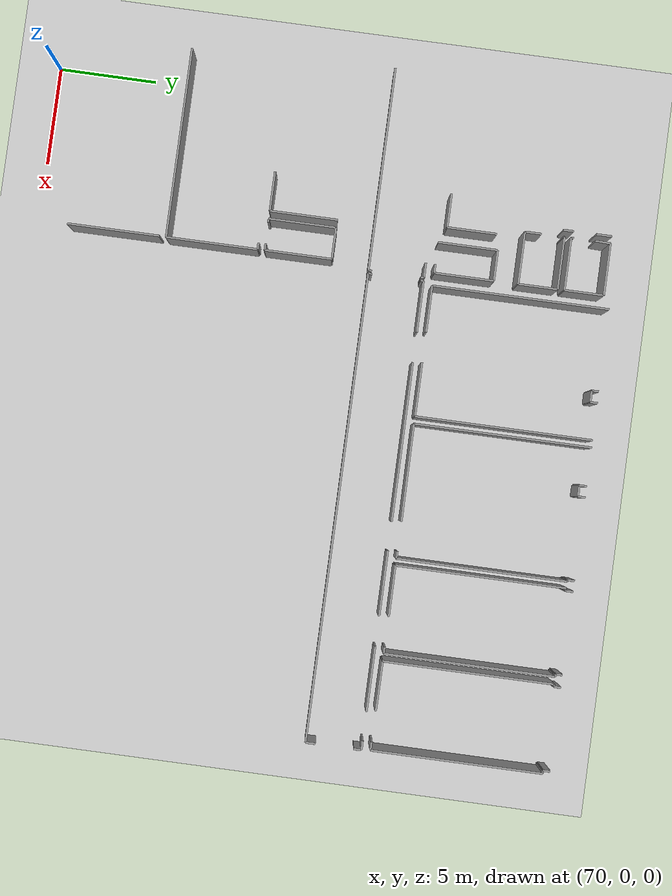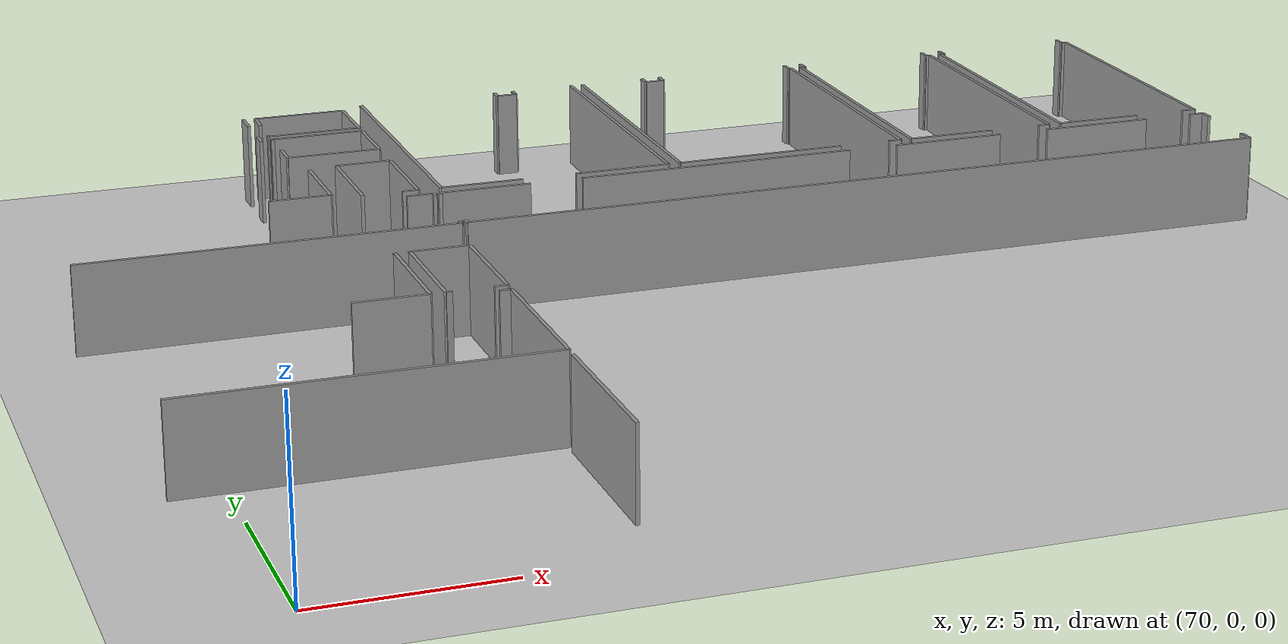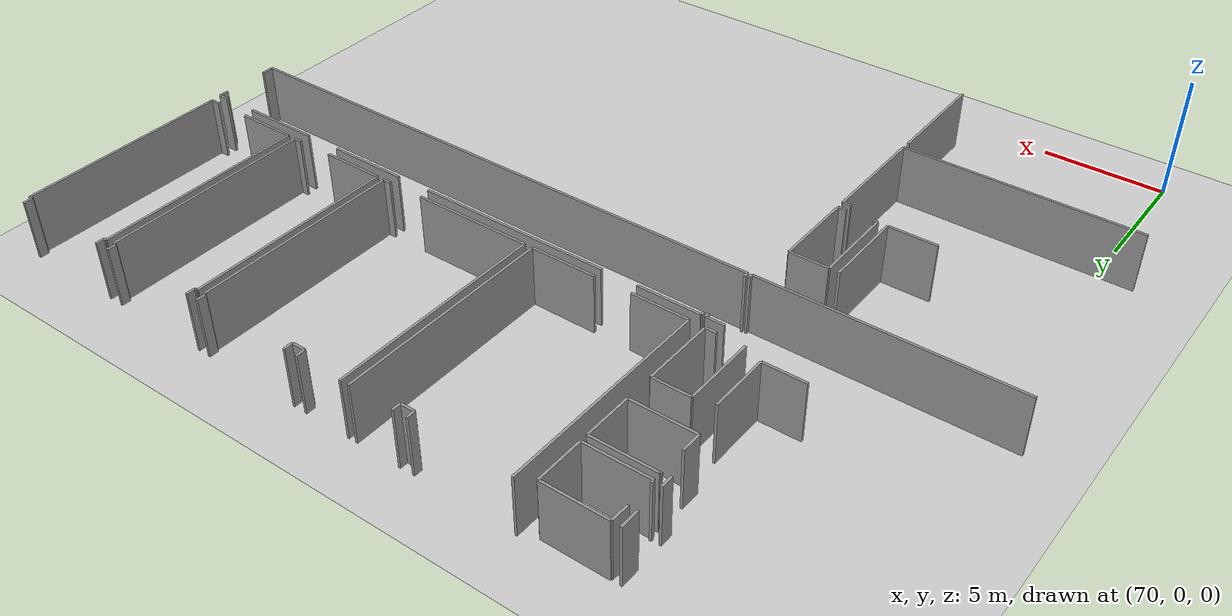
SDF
<sdf version="1.6">
 <world name="default">
  <model name="ground_plane">
   <static>1</static>
   <link name="link">
    <collision name="collision">
     <geometry><plane><normal>0 0 1</normal><size>100 100</size></plane></geometry>
     <surface><friction><ode><mu>100</mu><mu2>50</mu2></ode></friction></surface>
    </collision>
    <visual name="visual">
     <cast_shadows>0</cast_shadows>
     <geometry><plane><normal>0 0 1</normal><size>100 100</size></plane></geometry>
     <material>
      <script><uri>file://media/materials/scripts/gazebo.material</uri><name>Gazebo/Grey</name></script>
     </material>
    </visual>
   </link>
  </model>
  <model name="50010536_PLAN3">
   <static>1</static>
   <link name="Wall_685">
    <collision name="Wall_685_Collision">
     <geometry><box><size>2.66361933784 0.1 2.5</size></box></geometry>
     <pose>1.33180966892 0 1.25 0 0 0</pose>
    </collision>
    <visual name="Wall_685_Visual">
     <pose>1.33180966892 0 1.25 0 0 0</pose>
     <geometry><box><size>2.66361933784 0.1 2.5</size></box></geometry>
     <material>
      <script><uri>file://media/materials/scripts/gazebo.material</uri><name>Gazebo/Grey</name></script>
      <ambient>1 1 1 1</ambient>
     </material>
    </visual>
    <pose>178.117131702 -0.393562517855 0 0 0 0.0</pose>
   </link>
   <link name="Wall_686">
    <collision name="Wall_686_Collision">
     <geometry><box><size>2.00915468368 0.1 2.5</size></box></geometry>
     <pose>1.00457734184 0 1.25 0 0 0</pose>
    </collision>
    <visual name="Wall_686_Visual">
     <pose>1.00457734184 0 1.25 0 0 0</pose>
     <geometry><box><size>2.00915468368 0.1 2.5</size></box></geometry>
     <material>
      <script><uri>file://media/materials/scripts/gazebo.material</uri><name>Gazebo/Grey</name></script>
      <ambient>1 1 1 1</ambient>
     </material>
    </visual>
    <pose>180.78075104 -0.393562517855 0 0 0 -1.57079632679</pose>
   </link>
   <link name="Wall_687">
    <collision name="Wall_687_Collision">
     <geometry><box><size>2.69104529727 0.1 2.5</size></box></geometry>
     <pose>1.34552264864 0 1.25 0 0 0</pose>
    </collision>
    <visual name="Wall_687_Visual">
     <pose>1.34552264864 0 1.25 0 0 0</pose>
     <geometry><box><size>2.69104529727 0.1 2.5</size></box></geometry>
     <material>
      <script><uri>file://media/materials/scripts/gazebo.material</uri><name>Gazebo/Grey</name></script>
      <ambient>1 1 1 1</ambient>
     </material>
    </visual>
    <pose>180.78075104 -2.40271720154 0 0 0 3.14159265359</pose>
   </link>
   <link name="Wall_688">
    <collision name="Wall_688_Collision">
     <geometry><box><size>0.126032441355 0.1 2.5</size></box></geometry>
     <pose>0.0630162206774 0 1.25 0 0 0</pose>
    </collision>
    <visual name="Wall_688_Visual">
     <pose>0.0630162206774 0 1.25 0 0 0</pose>
     <geometry><box><size>0.126032441355 0.1 2.5</size></box></geometry>
     <material>
      <script><uri>file://media/materials/scripts/gazebo.material</uri><name>Gazebo/Grey</name></script>
      <ambient>1 1 1 1</ambient>
     </material>
    </visual>
    <pose>178.089705742 -2.40271720154 0 0 0 1.57079632679</pose>
   </link>
   <link name="Wall_689">
    <collision name="Wall_689_Collision">
     <geometry><box><size>0.766081664972 0.1 2.5</size></box></geometry>
     <pose>0.383040832486 0 1.25 0 0 0</pose>
    </collision>
    <visual name="Wall_689_Visual">
     <pose>0.383040832486 0 1.25 0 0 0</pose>
     <geometry><box><size>0.766081664972 0.1 2.5</size></box></geometry>
     <material>
      <script><uri>file://media/materials/scripts/gazebo.material</uri><name>Gazebo/Grey</name></script>
      <ambient>1 1 1 1</ambient>
     </material>
    </visual>
    <pose>178.089705742 -1.15915309653 0 0 0 1.53498836723</pose>
   </link>
   <link name="Wall_690">
    <collision name="Wall_690_Collision">
     <geometry><box><size>0.838828048122 0.1 2.5</size></box></geometry>
     <pose>0.419414024061 0 1.25 0 0 0</pose>
    </collision>
    <visual name="Wall_690_Visual">
     <pose>0.419414024061 0 1.25 0 0 0</pose>
     <geometry><box><size>0.838828048122 0.1 2.5</size></box></geometry>
     <material>
      <script><uri>file://media/materials/scripts/gazebo.material</uri><name>Gazebo/Grey</name></script>
      <ambient>1 1 1 1</ambient>
     </material>
    </visual>
    <pose>178.10265689 -4.75563597118 0 0 0 1.57079632679</pose>
   </link>
   <link name="Wall_691">
    <collision name="Wall_691_Collision">
     <geometry><box><size>0.0646033711075 0.1 2.5</size></box></geometry>
     <pose>0.0323016855538 0 1.25 0 0 0</pose>
    </collision>
    <visual name="Wall_691_Visual">
     <pose>0.0323016855538 0 1.25 0 0 0</pose>
     <geometry><box><size>0.0646033711075 0.1 2.5</size></box></geometry>
     <material>
      <script><uri>file://media/materials/scripts/gazebo.material</uri><name>Gazebo/Grey</name></script>
      <ambient>1 1 1 1</ambient>
     </material>
    </visual>
    <pose>178.10265689 -2.80493921214 0 0 0 1.57079632679</pose>
   </link>
   <link name="Wall_692">
    <collision name="Wall_692_Collision">
     <geometry><box><size>2.68393486335 0.1 2.5</size></box></geometry>
     <pose>1.34196743167 0 1.25 0 0 0</pose>
    </collision>
    <visual name="Wall_692_Visual">
     <pose>1.34196743167 0 1.25 0 0 0</pose>
     <geometry><box><size>2.68393486335 0.1 2.5</size></box></geometry>
     <material>
      <script><uri>file://media/materials/scripts/gazebo.material</uri><name>Gazebo/Grey</name></script>
      <ambient>1 1 1 1</ambient>
     </material>
    </visual>
    <pose>178.10265689 -2.74033584103 0 0 0 0.0</pose>
   </link>
   <link name="Wall_693">
    <collision name="Wall_693_Collision">
     <geometry><box><size>2.02418817255 0.1 2.5</size></box></geometry>
     <pose>1.01209408628 0 1.25 0 0 0</pose>
    </collision>
    <visual name="Wall_693_Visual">
     <pose>1.01209408628 0 1.25 0 0 0</pose>
     <geometry><box><size>2.02418817255 0.1 2.5</size></box></geometry>
     <material>
      <script><uri>file://media/materials/scripts/gazebo.material</uri><name>Gazebo/Grey</name></script>
      <ambient>1 1 1 1</ambient>
     </material>
    </visual>
    <pose>180.786591753 -2.74033584103 0 0 0 -1.57079632679</pose>
   </link>
   <link name="Wall_694">
    <collision name="Wall_694_Collision">
     <geometry><box><size>2.68394958 0.1 2.5</size></box></geometry>
     <pose>1.34197479 0 1.25 0 0 0</pose>
    </collision>
    <visual name="Wall_694_Visual">
     <pose>1.34197479 0 1.25 0 0 0</pose>
     <geometry><box><size>2.68394958 0.1 2.5</size></box></geometry>
     <material>
      <script><uri>file://media/materials/scripts/gazebo.material</uri><name>Gazebo/Grey</name></script>
      <ambient>1 1 1 1</ambient>
     </material>
    </visual>
    <pose>180.786591753 -4.76452401359 0 0 0 3.13828109412</pose>
   </link>
   <link name="Wall_697">
    <collision name="Wall_697_Collision">
     <geometry><box><size>0.794667174555 0.1 2.5</size></box></geometry>
     <pose>0.397333587277 0 1.25 0 0 0</pose>
    </collision>
    <visual name="Wall_697_Visual">
     <pose>0.397333587277 0 1.25 0 0 0</pose>
     <geometry><box><size>0.794667174555 0.1 2.5</size></box></geometry>
     <material>
      <script><uri>file://media/materials/scripts/gazebo.material</uri><name>Gazebo/Grey</name></script>
      <ambient>1 1 1 1</ambient>
     </material>
    </visual>
    <pose>177.750436466 -0.360321239247 0 0 0 -1.57079632679</pose>
   </link>
   <link name="Wall_698">
    <collision name="Wall_698_Collision">
     <geometry><box><size>0.520915468368 0.1 2.5</size></box></geometry>
     <pose>0.260457734184 0 1.25 0 0 0</pose>
    </collision>
    <visual name="Wall_698_Visual">
     <pose>0.260457734184 0 1.25 0 0 0</pose>
     <geometry><box><size>0.520915468368 0.1 2.5</size></box></geometry>
     <material>
      <script><uri>file://media/materials/scripts/gazebo.material</uri><name>Gazebo/Grey</name></script>
      <ambient>1 1 1 1</ambient>
     </material>
    </visual>
    <pose>177.750436466 -2.31251626829 0 0 0 -1.57079632679</pose>
   </link>
   <link name="Wall_704">
    <collision name="Wall_704_Collision">
     <geometry><box><size>2.53842491191 0.1 2.5</size></box></geometry>
     <pose>1.26921245596 0 1.25 0 0 0</pose>
    </collision>
    <visual name="Wall_704_Visual">
     <pose>1.26921245596 0 1.25 0 0 0</pose>
     <geometry><box><size>2.53842491191 0.1 2.5</size></box></geometry>
     <material>
      <script><uri>file://media/materials/scripts/gazebo.material</uri><name>Gazebo/Grey</name></script>
      <ambient>1 1 1 1</ambient>
     </material>
    </visual>
    <pose>178.406120052 -6.1579405136 0 0 0 -1.57079632679</pose>
   </link>
   <link name="Wall_705">
    <collision name="Wall_705_Collision">
     <geometry><box><size>1.74459575279 0.1 2.5</size></box></geometry>
     <pose>0.872297876393 0 1.25 0 0 0</pose>
    </collision>
    <visual name="Wall_705_Visual">
     <pose>0.872297876393 0 1.25 0 0 0</pose>
     <geometry><box><size>1.74459575279 0.1 2.5</size></box></geometry>
     <material>
      <script><uri>file://media/materials/scripts/gazebo.material</uri><name>Gazebo/Grey</name></script>
      <ambient>1 1 1 1</ambient>
     </material>
    </visual>
    <pose>178.406120052 -8.69636542552 0 0 0 3.14159265359</pose>
   </link>
   <link name="Wall_708">
    <collision name="Wall_708_Collision">
     <geometry><box><size>1.57242167413 0.1 2.5</size></box></geometry>
     <pose>0.786210837063 0 1.25 0 0 0</pose>
    </collision>
    <visual name="Wall_708_Visual">
     <pose>0.786210837063 0 1.25 0 0 0</pose>
     <geometry><box><size>1.57242167413 0.1 2.5</size></box></geometry>
     <material>
      <script><uri>file://media/materials/scripts/gazebo.material</uri><name>Gazebo/Grey</name></script>
      <ambient>1 1 1 1</ambient>
     </material>
    </visual>
    <pose>179.21924896 -6.00521855061 0 0 0 0.0</pose>
   </link>
   <link name="Wall_709">
    <collision name="Wall_709_Collision">
     <geometry><box><size>3.04082785766 0.1 2.5</size></box></geometry>
     <pose>1.52041392883 0 1.25 0 0 0</pose>
    </collision>
    <visual name="Wall_709_Visual">
     <pose>1.52041392883 0 1.25 0 0 0</pose>
     <geometry><box><size>3.04082785766 0.1 2.5</size></box></geometry>
     <material>
      <script><uri>file://media/materials/scripts/gazebo.material</uri><name>Gazebo/Grey</name></script>
      <ambient>1 1 1 1</ambient>
     </material>
    </visual>
    <pose>180.791670635 -6.00521855061 0 0 0 -1.57079632679</pose>
   </link>
   <link name="Wall_710">
    <collision name="Wall_710_Collision">
     <geometry><box><size>0.451766498429 0.1 2.5</size></box></geometry>
     <pose>0.225883249214 0 1.25 0 0 0</pose>
    </collision>
    <visual name="Wall_710_Visual">
     <pose>0.225883249214 0 1.25 0 0 0</pose>
     <geometry><box><size>0.451766498429 0.1 2.5</size></box></geometry>
     <material>
      <script><uri>file://media/materials/scripts/gazebo.material</uri><name>Gazebo/Grey</name></script>
      <ambient>1 1 1 1</ambient>
     </material>
    </visual>
    <pose>180.791670635 -9.04604640828 0 0 0 3.14159265359</pose>
   </link>
   <link name="Wall_711">
    <collision name="Wall_711_Collision">
     <geometry><box><size>3.0408291407 0.1 2.5</size></box></geometry>
     <pose>1.52041457035 0 1.25 0 0 0</pose>
    </collision>
    <visual name="Wall_711_Visual">
     <pose>1.52041457035 0 1.25 0 0 0</pose>
     <geometry><box><size>3.0408291407 0.1 2.5</size></box></geometry>
     <material>
      <script><uri>file://media/materials/scripts/gazebo.material</uri><name>Gazebo/Grey</name></script>
      <ambient>1 1 1 1</ambient>
     </material>
    </visual>
    <pose>179.216455576 -9.04604640828 0 0 0 1.56987770065</pose>
   </link>
   <link name="Wall_723">
    <collision name="Wall_723_Collision">
     <geometry><box><size>0.763355870869 0.1 2.5</size></box></geometry>
     <pose>0.381677935435 0 1.25 0 0 0</pose>
    </collision>
    <visual name="Wall_723_Visual">
     <pose>0.381677935435 0 1.25 0 0 0</pose>
     <geometry><box><size>0.763355870869 0.1 2.5</size></box></geometry>
     <material>
      <script><uri>file://media/materials/scripts/gazebo.material</uri><name>Gazebo/Grey</name></script>
      <ambient>1 1 1 1</ambient>
     </material>
    </visual>
    <pose>180.341935689 -9.52955591531 0 0 0 0.0</pose>
   </link>
   <link name="Wall_724">
    <collision name="Wall_724_Collision">
     <geometry><box><size>0.169634637971 0.1 2.5</size></box></geometry>
     <pose>0.0848173189855 0 1.25 0 0 0</pose>
    </collision>
    <visual name="Wall_724_Visual">
     <pose>0.0848173189855 0 1.25 0 0 0</pose>
     <geometry><box><size>0.169634637971 0.1 2.5</size></box></geometry>
     <material>
      <script><uri>file://media/materials/scripts/gazebo.material</uri><name>Gazebo/Grey</name></script>
      <ambient>1 1 1 1</ambient>
     </material>
    </visual>
    <pose>181.10529156 -9.52955591531 0 0 0 -1.57079632679</pose>
   </link>
   <link name="Wall_725">
    <collision name="Wall_725_Collision">
     <geometry><box><size>0.175475351554 0.1 2.5</size></box></geometry>
     <pose>0.0877376757769 0 1.25 0 0 0</pose>
    </collision>
    <visual name="Wall_725_Visual">
     <pose>0.0877376757769 0 1.25 0 0 0</pose>
     <geometry><box><size>0.175475351554 0.1 2.5</size></box></geometry>
     <material>
      <script><uri>file://media/materials/scripts/gazebo.material</uri><name>Gazebo/Grey</name></script>
      <ambient>1 1 1 1</ambient>
     </material>
    </visual>
    <pose>181.10529156 -12.1898739803 0 0 0 -1.57079632679</pose>
   </link>
   <link name="Wall_726">
    <collision name="Wall_726_Collision">
     <geometry><box><size>10.4292289623 0.1 2.5</size></box></geometry>
     <pose>5.21461448116 0 1.25 0 0 0</pose>
    </collision>
    <visual name="Wall_726_Visual">
     <pose>5.21461448116 0 1.25 0 0 0</pose>
     <geometry><box><size>10.4292289623 0.1 2.5</size></box></geometry>
     <material>
      <script><uri>file://media/materials/scripts/gazebo.material</uri><name>Gazebo/Grey</name></script>
      <ambient>1 1 1 1</ambient>
     </material>
    </visual>
    <pose>181.10529156 -12.3653493318 0 0 0 3.14159265359</pose>
   </link>
   <link name="Wall_732">
    <collision name="Wall_732_Collision">
     <geometry><box><size>9.02697520871 0.1 2.5</size></box></geometry>
     <pose>4.51348760436 0 1.25 0 0 0</pose>
    </collision>
    <visual name="Wall_732_Visual">
     <pose>4.51348760436 0 1.25 0 0 0</pose>
     <geometry><box><size>9.02697520871 0.1 2.5</size></box></geometry>
     <material>
      <script><uri>file://media/materials/scripts/gazebo.material</uri><name>Gazebo/Grey</name></script>
      <ambient>1 1 1 1</ambient>
     </material>
    </visual>
    <pose>181.445322668 -9.0605212202 0 0 0 1.57079632679</pose>
   </link>
   <link name="Wall_733">
    <collision name="Wall_733_Collision">
     <geometry><box><size>0.351941084976 0.1 2.5</size></box></geometry>
     <pose>0.175970542488 0 1.25 0 0 0</pose>
    </collision>
    <visual name="Wall_733_Visual">
     <pose>0.175970542488 0 1.25 0 0 0</pose>
     <geometry><box><size>0.351941084976 0.1 2.5</size></box></geometry>
     <material>
      <script><uri>file://media/materials/scripts/gazebo.material</uri><name>Gazebo/Grey</name></script>
      <ambient>1 1 1 1</ambient>
     </material>
    </visual>
    <pose>185.646573342 -0.033546011491 0 0 0 -1.57079632679</pose>
   </link>
   <link name="Wall_734">
    <collision name="Wall_734_Collision">
     <geometry><box><size>0.588388407453 0.1 2.5</size></box></geometry>
     <pose>0.294194203727 0 1.25 0 0 0</pose>
    </collision>
    <visual name="Wall_734_Visual">
     <pose>0.294194203727 0 1.25 0 0 0</pose>
     <geometry><box><size>0.588388407453 0.1 2.5</size></box></geometry>
     <material>
      <script><uri>file://media/materials/scripts/gazebo.material</uri><name>Gazebo/Grey</name></script>
      <ambient>1 1 1 1</ambient>
     </material>
    </visual>
    <pose>185.646573342 -0.385487096467 0 0 0 0.0</pose>
   </link>
   <link name="Wall_735">
    <collision name="Wall_735_Collision">
     <geometry><box><size>0.370225057931 0.1 2.5</size></box></geometry>
     <pose>0.185112528965 0 1.25 0 0 0</pose>
    </collision>
    <visual name="Wall_735_Visual">
     <pose>0.185112528965 0 1.25 0 0 0</pose>
     <geometry><box><size>0.370225057931 0.1 2.5</size></box></geometry>
     <material>
      <script><uri>file://media/materials/scripts/gazebo.material</uri><name>Gazebo/Grey</name></script>
      <ambient>1 1 1 1</ambient>
     </material>
    </visual>
    <pose>186.23496175 -0.385487096467 0 0 0 1.57079632679</pose>
   </link>
   <link name="Wall_736">
    <collision name="Wall_736_Collision">
     <geometry><box><size>9.04652890201 0.1 2.5</size></box></geometry>
     <pose>4.523264451 0 1.25 0 0 0</pose>
    </collision>
    <visual name="Wall_736_Visual">
     <pose>4.523264451 0 1.25 0 0 0</pose>
     <geometry><box><size>9.04652890201 0.1 2.5</size></box></geometry>
     <material>
      <script><uri>file://media/materials/scripts/gazebo.material</uri><name>Gazebo/Grey</name></script>
      <ambient>1 1 1 1</ambient>
     </material>
    </visual>
    <pose>188.127860839 -0.015262038536 0 0 0 -1.57079632679</pose>
   </link>
   <link name="Wall_737">
    <collision name="Wall_737_Collision">
     <geometry><box><size>2.74716693648 0.1 2.5</size></box></geometry>
     <pose>1.37358346824 0 1.25 0 0 0</pose>
    </collision>
    <visual name="Wall_737_Visual">
     <pose>1.37358346824 0 1.25 0 0 0</pose>
     <geometry><box><size>2.74716693648 0.1 2.5</size></box></geometry>
     <material>
      <script><uri>file://media/materials/scripts/gazebo.material</uri><name>Gazebo/Grey</name></script>
      <ambient>1 1 1 1</ambient>
     </material>
    </visual>
    <pose>188.127860839 -9.06179094055 0 0 0 3.14159265359</pose>
   </link>
   <link name="Wall_738">
    <collision name="Wall_738_Collision">
     <geometry><box><size>2.37818654344 0.1 2.5</size></box></geometry>
     <pose>1.18909327172 0 1.25 0 0 0</pose>
    </collision>
    <visual name="Wall_738_Visual">
     <pose>1.18909327172 0 1.25 0 0 0</pose>
     <geometry><box><size>2.37818654344 0.1 2.5</size></box></geometry>
     <material>
      <script><uri>file://media/materials/scripts/gazebo.material</uri><name>Gazebo/Grey</name></script>
      <ambient>1 1 1 1</ambient>
     </material>
    </visual>
    <pose>183.823508872 -9.06179094055 0 0 0 3.14105875081</pose>
   </link>
   <link name="Wall_739">
    <collision name="Wall_739_Collision">
     <geometry><box><size>9.05678824239 0.1 2.5</size></box></geometry>
     <pose>4.52839412119 0 1.25 0 0 0</pose>
    </collision>
    <visual name="Wall_739_Visual">
     <pose>4.52839412119 0 1.25 0 0 0</pose>
     <geometry><box><size>9.05678824239 0.1 2.5</size></box></geometry>
     <material>
      <script><uri>file://media/materials/scripts/gazebo.material</uri><name>Gazebo/Grey</name></script>
      <ambient>1 1 1 1</ambient>
     </material>
    </visual>
    <pose>188.498873123 -9.06686982192 0 0 0 1.57079632679</pose>
   </link>
   <link name="Wall_740">
    <collision name="Wall_740_Collision">
     <geometry><box><size>0.38668063359 0.1 2.5</size></box></geometry>
     <pose>0.193340316795 0 1.25 0 0 0</pose>
    </collision>
    <visual name="Wall_740_Visual">
     <pose>0.193340316795 0 1.25 0 0 0</pose>
     <geometry><box><size>0.38668063359 0.1 2.5</size></box></geometry>
     <material>
      <script><uri>file://media/materials/scripts/gazebo.material</uri><name>Gazebo/Grey</name></script>
      <ambient>1 1 1 1</ambient>
     </material>
    </visual>
    <pose>190.466431768 -0.0100815795321 0 0 0 -1.57079632679</pose>
   </link>
   <link name="Wall_741">
    <collision name="Wall_741_Collision">
     <geometry><box><size>0.568580770085 0.1 2.5</size></box></geometry>
     <pose>0.284290385043 0 1.25 0 0 0</pose>
    </collision>
    <visual name="Wall_741_Visual">
     <pose>0.284290385043 0 1.25 0 0 0</pose>
     <geometry><box><size>0.568580770085 0.1 2.5</size></box></geometry>
     <material>
      <script><uri>file://media/materials/scripts/gazebo.material</uri><name>Gazebo/Grey</name></script>
      <ambient>1 1 1 1</ambient>
     </material>
    </visual>
    <pose>190.466431768 -0.396762213123 0 0 0 0.0</pose>
   </link>
   <link name="Wall_742">
    <collision name="Wall_742_Collision">
     <geometry><box><size>0.384014220868 0.1 2.5</size></box></geometry>
     <pose>0.192007110434 0 1.25 0 0 0</pose>
    </collision>
    <visual name="Wall_742_Visual">
     <pose>0.192007110434 0 1.25 0 0 0</pose>
     <geometry><box><size>0.384014220868 0.1 2.5</size></box></geometry>
     <material>
      <script><uri>file://media/materials/scripts/gazebo.material</uri><name>Gazebo/Grey</name></script>
      <ambient>1 1 1 1</ambient>
     </material>
    </visual>
    <pose>191.035012538 -0.396762213123 0 0 0 1.57079632679</pose>
   </link>
   <link name="Wall_743">
    <collision name="Wall_743_Collision">
     <geometry><box><size>0.366949179443 0.1 2.5</size></box></geometry>
     <pose>0.183474589722 0 1.25 0 0 0</pose>
    </collision>
    <visual name="Wall_743_Visual">
     <pose>0.183474589722 0 1.25 0 0 0</pose>
     <geometry><box><size>0.366949179443 0.1 2.5</size></box></geometry>
     <material>
      <script><uri>file://media/materials/scripts/gazebo.material</uri><name>Gazebo/Grey</name></script>
      <ambient>1 1 1 1</ambient>
     </material>
    </visual>
    <pose>195.257848459 -0.0127479922547 0 0 0 -1.57079632679</pose>
   </link>
   <link name="Wall_744">
    <collision name="Wall_744_Collision">
     <geometry><box><size>0.0744056121639 0.1 2.5</size></box></geometry>
     <pose>0.037202806082 0 1.25 0 0 0</pose>
    </collision>
    <visual name="Wall_744_Visual">
     <pose>0.037202806082 0 1.25 0 0 0</pose>
     <geometry><box><size>0.0744056121639 0.1 2.5</size></box></geometry>
     <material>
      <script><uri>file://media/materials/scripts/gazebo.material</uri><name>Gazebo/Grey</name></script>
      <ambient>1 1 1 1</ambient>
     </material>
    </visual>
    <pose>195.257848459 -0.379697171698 0 0 0 0.0</pose>
   </link>
   <link name="Wall_745">
    <collision name="Wall_745_Collision">
     <geometry><box><size>8.66584134844 0.1 2.5</size></box></geometry>
     <pose>4.33292067422 0 1.25 0 0 0</pose>
    </collision>
    <visual name="Wall_745_Visual">
     <pose>4.33292067422 0 1.25 0 0 0</pose>
     <geometry><box><size>8.66584134844 0.1 2.5</size></box></geometry>
     <material>
      <script><uri>file://media/materials/scripts/gazebo.material</uri><name>Gazebo/Grey</name></script>
      <ambient>1 1 1 1</ambient>
     </material>
    </visual>
    <pose>195.332254071 -0.379697171698 0 0 0 -1.57079632679</pose>
   </link>
   <link name="Wall_746">
    <collision name="Wall_746_Collision">
     <geometry><box><size>0.348919150557 0.1 2.5</size></box></geometry>
     <pose>0.174459575279 0 1.25 0 0 0</pose>
    </collision>
    <visual name="Wall_746_Visual">
     <pose>0.174459575279 0 1.25 0 0 0</pose>
     <geometry><box><size>0.348919150557 0.1 2.5</size></box></geometry>
     <material>
      <script><uri>file://media/materials/scripts/gazebo.material</uri><name>Gazebo/Grey</name></script>
      <ambient>1 1 1 1</ambient>
     </material>
    </visual>
    <pose>195.332254071 -9.04553852014 0 0 0 3.14159265359</pose>
   </link>
   <link name="Wall_747">
    <collision name="Wall_747_Collision">
     <geometry><box><size>4.9555104701 0.1 2.5</size></box></geometry>
     <pose>2.47775523505 0 1.25 0 0 0</pose>
    </collision>
    <visual name="Wall_747_Visual">
     <pose>2.47775523505 0 1.25 0 0 0</pose>
     <geometry><box><size>4.9555104701 0.1 2.5</size></box></geometry>
     <material>
      <script><uri>file://media/materials/scripts/gazebo.material</uri><name>Gazebo/Grey</name></script>
      <ambient>1 1 1 1</ambient>
     </material>
    </visual>
    <pose>193.454337682 -9.04553852014 0 0 0 -3.13728807835</pose>
   </link>
   <link name="Wall_748">
    <collision name="Wall_748_Collision">
     <geometry><box><size>8.65560740247 0.1 2.5</size></box></geometry>
     <pose>4.32780370123 0 1.25 0 0 0</pose>
    </collision>
    <visual name="Wall_748_Visual">
     <pose>4.32780370123 0 1.25 0 0 0</pose>
     <geometry><box><size>8.65560740247 0.1 2.5</size></box></geometry>
     <material>
      <script><uri>file://media/materials/scripts/gazebo.material</uri><name>Gazebo/Grey</name></script>
      <ambient>1 1 1 1</ambient>
     </material>
    </visual>
    <pose>195.676602228 -9.05595022696 0 0 0 1.57079632679</pose>
   </link>
   <link name="Wall_749">
    <collision name="Wall_749_Collision">
     <geometry><box><size>0.124432593721 0.1 2.5</size></box></geometry>
     <pose>0.0622162968606 0 1.25 0 0 0</pose>
    </collision>
    <visual name="Wall_749_Visual">
     <pose>0.0622162968606 0 1.25 0 0 0</pose>
     <geometry><box><size>0.124432593721 0.1 2.5</size></box></geometry>
     <material>
      <script><uri>file://media/materials/scripts/gazebo.material</uri><name>Gazebo/Grey</name></script>
      <ambient>1 1 1 1</ambient>
     </material>
    </visual>
    <pose>195.676602228 -0.400342824493 0 0 0 0.0</pose>
   </link>
   <link name="Wall_750">
    <collision name="Wall_750_Collision">
     <geometry><box><size>0.37324699235 0.1 2.5</size></box></geometry>
     <pose>0.186623496175 0 1.25 0 0 0</pose>
    </collision>
    <visual name="Wall_750_Visual">
     <pose>0.186623496175 0 1.25 0 0 0</pose>
     <geometry><box><size>0.37324699235 0.1 2.5</size></box></geometry>
     <material>
      <script><uri>file://media/materials/scripts/gazebo.material</uri><name>Gazebo/Grey</name></script>
      <ambient>1 1 1 1</ambient>
     </material>
    </visual>
    <pose>195.801034822 -0.400342824493 0 0 0 1.57079632679</pose>
   </link>
   <link name="Wall_751">
    <collision name="Wall_751_Collision">
     <geometry><box><size>0.351103069549 0.1 2.5</size></box></geometry>
     <pose>0.175551534774 0 1.25 0 0 0</pose>
    </collision>
    <visual name="Wall_751_Visual">
     <pose>0.175551534774 0 1.25 0 0 0</pose>
     <geometry><box><size>0.351103069549 0.1 2.5</size></box></geometry>
     <material>
      <script><uri>file://media/materials/scripts/gazebo.material</uri><name>Gazebo/Grey</name></script>
      <ambient>1 1 1 1</ambient>
     </material>
    </visual>
    <pose>200.007618322 -0.027095832143 0 0 0 -1.57079632679</pose>
   </link>
   <link name="Wall_752">
    <collision name="Wall_752_Collision">
     <geometry><box><size>0.124940481859 0.1 2.5</size></box></geometry>
     <pose>0.0624702409294 0 1.25 0 0 0</pose>
    </collision>
    <visual name="Wall_752_Visual">
     <pose>0.0624702409294 0 1.25 0 0 0</pose>
     <geometry><box><size>0.124940481859 0.1 2.5</size></box></geometry>
     <material>
      <script><uri>file://media/materials/scripts/gazebo.material</uri><name>Gazebo/Grey</name></script>
      <ambient>1 1 1 1</ambient>
     </material>
    </visual>
    <pose>200.007618322 -0.378198901692 0 0 0 0.0</pose>
   </link>
   <link name="Wall_753">
    <collision name="Wall_753_Collision">
     <geometry><box><size>8.67267244389 0.1 2.5</size></box></geometry>
     <pose>4.33633622195 0 1.25 0 0 0</pose>
    </collision>
    <visual name="Wall_753_Visual">
     <pose>4.33633622195 0 1.25 0 0 0</pose>
     <geometry><box><size>8.67267244389 0.1 2.5</size></box></geometry>
     <material>
      <script><uri>file://media/materials/scripts/gazebo.material</uri><name>Gazebo/Grey</name></script>
      <ambient>1 1 1 1</ambient>
     </material>
    </visual>
    <pose>200.132558804 -0.378198901692 0 0 0 -1.57079632679</pose>
   </link>
   <link name="Wall_754">
    <collision name="Wall_754_Collision">
     <geometry><box><size>0.329365457258 0.1 2.5</size></box></geometry>
     <pose>0.164682728629 0 1.25 0 0 0</pose>
    </collision>
    <visual name="Wall_754_Visual">
     <pose>0.164682728629 0 1.25 0 0 0</pose>
     <geometry><box><size>0.329365457258 0.1 2.5</size></box></geometry>
     <material>
      <script><uri>file://media/materials/scripts/gazebo.material</uri><name>Gazebo/Grey</name></script>
      <ambient>1 1 1 1</ambient>
     </material>
    </visual>
    <pose>200.132558804 -9.05087134559 0 0 0 3.14159265359</pose>
   </link>
   <link name="Wall_755">
    <collision name="Wall_755_Collision">
     <geometry><box><size>2.58718715828 0.1 2.5</size></box></geometry>
     <pose>1.29359357914 0 1.25 0 0 0</pose>
    </collision>
    <visual name="Wall_755_Visual">
     <pose>1.29359357914 0 1.25 0 0 0</pose>
     <geometry><box><size>2.58718715828 0.1 2.5</size></box></geometry>
     <material>
      <script><uri>file://media/materials/scripts/gazebo.material</uri><name>Gazebo/Grey</name></script>
      <ambient>1 1 1 1</ambient>
     </material>
    </visual>
    <pose>198.263784401 -9.05087134559 0 0 0 -3.13962956228</pose>
   </link>
   <link name="Wall_756">
    <collision name="Wall_756_Collision">
     <geometry><box><size>8.68034155477 0.1 2.5</size></box></geometry>
     <pose>4.34017077739 0 1.25 0 0 0</pose>
    </collision>
    <visual name="Wall_756_Visual">
     <pose>4.34017077739 0 1.25 0 0 0</pose>
     <geometry><box><size>8.68034155477 0.1 2.5</size></box></geometry>
     <material>
      <script><uri>file://media/materials/scripts/gazebo.material</uri><name>Gazebo/Grey</name></script>
      <ambient>1 1 1 1</ambient>
     </material>
    </visual>
    <pose>200.513474907 -9.05696600324 0 0 0 1.57079632679</pose>
   </link>
   <link name="Wall_757">
    <collision name="Wall_757_Collision">
     <geometry><box><size>0.120115544551 0.1 2.5</size></box></geometry>
     <pose>0.0600577722756 0 1.25 0 0 0</pose>
    </collision>
    <visual name="Wall_757_Visual">
     <pose>0.0600577722756 0 1.25 0 0 0</pose>
     <geometry><box><size>0.120115544551 0.1 2.5</size></box></geometry>
     <material>
      <script><uri>file://media/materials/scripts/gazebo.material</uri><name>Gazebo/Grey</name></script>
      <ambient>1 1 1 1</ambient>
     </material>
    </visual>
    <pose>200.513474907 -0.376624448465 0 0 0 0.0</pose>
   </link>
   <link name="Wall_758">
    <collision name="Wall_758_Collision">
     <geometry><box><size>0.351509380059 0.1 2.5</size></box></geometry>
     <pose>0.17575469003 0 1.25 0 0 0</pose>
    </collision>
    <visual name="Wall_758_Visual">
     <pose>0.17575469003 0 1.25 0 0 0</pose>
     <geometry><box><size>0.351509380059 0.1 2.5</size></box></geometry>
     <material>
      <script><uri>file://media/materials/scripts/gazebo.material</uri><name>Gazebo/Grey</name></script>
      <ambient>1 1 1 1</ambient>
     </material>
    </visual>
    <pose>200.633590452 -0.376624448465 0 0 0 1.57079632679</pose>
   </link>
   <link name="Wall_759">
    <collision name="Wall_759_Collision">
     <geometry><box><size>0.35752785449 0.1 2.5</size></box></geometry>
     <pose>0.178763927245 0 1.25 0 0 0</pose>
    </collision>
    <visual name="Wall_759_Visual">
     <pose>0.178763927245 0 1.25 0 0 0</pose>
     <geometry><box><size>0.35752785449 0.1 2.5</size></box></geometry>
     <material>
      <script><uri>file://media/materials/scripts/gazebo.material</uri><name>Gazebo/Grey</name></script>
      <ambient>1 1 1 1</ambient>
     </material>
    </visual>
    <pose>204.841189728 -0.0251150684062 0 0 0 -1.57079632679</pose>
   </link>
   <link name="Wall_760">
    <collision name="Wall_760_Collision">
     <geometry><box><size>0.152874329429 0.1 2.5</size></box></geometry>
     <pose>0.0764371647145 0 1.25 0 0 0</pose>
    </collision>
    <visual name="Wall_760_Visual">
     <pose>0.0764371647145 0 1.25 0 0 0</pose>
     <geometry><box><size>0.152874329429 0.1 2.5</size></box></geometry>
     <material>
      <script><uri>file://media/materials/scripts/gazebo.material</uri><name>Gazebo/Grey</name></script>
      <ambient>1 1 1 1</ambient>
     </material>
    </visual>
    <pose>204.841189728 -0.382642922896 0 0 0 0.0</pose>
   </link>
   <link name="Wall_761">
    <collision name="Wall_761_Collision">
     <geometry><box><size>8.6885439482 0.1 2.5</size></box></geometry>
     <pose>4.3442719741 0 1.25 0 0 0</pose>
    </collision>
    <visual name="Wall_761_Visual">
     <pose>4.3442719741 0 1.25 0 0 0</pose>
     <geometry><box><size>8.6885439482 0.1 2.5</size></box></geometry>
     <material>
      <script><uri>file://media/materials/scripts/gazebo.material</uri><name>Gazebo/Grey</name></script>
      <ambient>1 1 1 1</ambient>
     </material>
    </visual>
    <pose>204.994064057 -0.382642922896 0 0 0 -1.57079632679</pose>
   </link>
   <link name="Wall_762">
    <collision name="Wall_762_Collision">
     <geometry><box><size>0.407072342317 0.1 2.5</size></box></geometry>
     <pose>0.203536171158 0 1.25 0 0 0</pose>
    </collision>
    <visual name="Wall_762_Visual">
     <pose>0.203536171158 0 1.25 0 0 0</pose>
     <geometry><box><size>0.407072342317 0.1 2.5</size></box></geometry>
     <material>
      <script><uri>file://media/materials/scripts/gazebo.material</uri><name>Gazebo/Grey</name></script>
      <ambient>1 1 1 1</ambient>
     </material>
    </visual>
    <pose>204.994064057 -9.07118687109 0 0 0 3.14159265359</pose>
   </link>
   <link name="Wall_763">
    <collision name="Wall_763_Collision">
     <geometry><box><size>2.51916530191 0.1 2.5</size></box></geometry>
     <pose>1.25958265095 0 1.25 0 0 0</pose>
    </collision>
    <visual name="Wall_763_Visual">
     <pose>1.25958265095 0 1.25 0 0 0</pose>
     <geometry><box><size>2.51916530191 0.1 2.5</size></box></geometry>
     <material>
      <script><uri>file://media/materials/scripts/gazebo.material</uri><name>Gazebo/Grey</name></script>
      <ambient>1 1 1 1</ambient>
     </material>
    </visual>
    <pose>203.03260007 -9.07118687109 0 0 0 3.13594755226</pose>
   </link>
   <link name="Wall_764">
    <collision name="Wall_764_Collision">
     <geometry><box><size>2.62527378345 0.1 2.5</size></box></geometry>
     <pose>1.31263689172 0 1.25 0 0 0</pose>
    </collision>
    <visual name="Wall_764_Visual">
     <pose>1.31263689172 0 1.25 0 0 0</pose>
     <geometry><box><size>2.62527378345 0.1 2.5</size></box></geometry>
     <material>
      <script><uri>file://media/materials/scripts/gazebo.material</uri><name>Gazebo/Grey</name></script>
      <ambient>1 1 1 1</ambient>
     </material>
    </visual>
    <pose>181.272894645 -9.5280322509 0 0 0 0.0</pose>
   </link>
   <link name="Wall_765">
    <collision name="Wall_765_Collision">
     <geometry><box><size>8.10132368346 0.1 2.5</size></box></geometry>
     <pose>4.05066184173 0 1.25 0 0 0</pose>
    </collision>
    <visual name="Wall_765_Visual">
     <pose>4.05066184173 0 1.25 0 0 0</pose>
     <geometry><box><size>8.10132368346 0.1 2.5</size></box></geometry>
     <material>
      <script><uri>file://media/materials/scripts/gazebo.material</uri><name>Gazebo/Grey</name></script>
      <ambient>1 1 1 1</ambient>
     </material>
    </visual>
    <pose>185.424118338 -9.5280322509 0 0 0 0.0</pose>
   </link>
   <link name="Wall_766">
    <collision name="Wall_766_Collision">
     <geometry><box><size>3.28908357934 0.1 2.5</size></box></geometry>
     <pose>1.64454178967 0 1.25 0 0 0</pose>
    </collision>
    <visual name="Wall_766_Visual">
     <pose>1.64454178967 0 1.25 0 0 0</pose>
     <geometry><box><size>3.28908357934 0.1 2.5</size></box></geometry>
     <material>
      <script><uri>file://media/materials/scripts/gazebo.material</uri><name>Gazebo/Grey</name></script>
      <ambient>1 1 1 1</ambient>
     </material>
    </visual>
    <pose>195.015585817 -9.5280322509 0 0 0 0.0</pose>
   </link>
   <link name="Wall_767">
    <collision name="Wall_767_Collision">
     <geometry><box><size>3.27003777418 0.1 2.5</size></box></geometry>
     <pose>1.63501888709 0 1.25 0 0 0</pose>
    </collision>
    <visual name="Wall_767_Visual">
     <pose>1.63501888709 0 1.25 0 0 0</pose>
     <geometry><box><size>3.27003777418 0.1 2.5</size></box></geometry>
     <material>
      <script><uri>file://media/materials/scripts/gazebo.material</uri><name>Gazebo/Grey</name></script>
      <ambient>1 1 1 1</ambient>
     </material>
    </visual>
    <pose>199.843062565 -9.5280322509 0 0 0 0.0</pose>
   </link>
   <link name="Wall_768">
    <collision name="Wall_768_Collision">
     <geometry><box><size>0.441608735676 0.1 2.5</size></box></geometry>
     <pose>0.220804367838 0 1.25 0 0 0</pose>
    </collision>
    <visual name="Wall_768_Visual">
     <pose>0.220804367838 0 1.25 0 0 0</pose>
     <geometry><box><size>0.441608735676 0.1 2.5</size></box></geometry>
     <material>
      <script><uri>file://media/materials/scripts/gazebo.material</uri><name>Gazebo/Grey</name></script>
      <ambient>1 1 1 1</ambient>
     </material>
    </visual>
    <pose>204.59791131 -9.5280322509 0 0 0 0.0</pose>
   </link>
   <link name="Wall_769">
    <collision name="Wall_769_Collision">
     <geometry><box><size>0.388280481224 0.1 2.5</size></box></geometry>
     <pose>0.194140240612 0 1.25 0 0 0</pose>
    </collision>
    <visual name="Wall_769_Visual">
     <pose>0.194140240612 0 1.25 0 0 0</pose>
     <geometry><box><size>0.388280481224 0.1 2.5</size></box></geometry>
     <material>
      <script><uri>file://media/materials/scripts/gazebo.material</uri><name>Gazebo/Grey</name></script>
      <ambient>1 1 1 1</ambient>
     </material>
    </visual>
    <pose>205.039520046 -9.5280322509 0 0 0 -1.57079632679</pose>
   </link>
   <link name="Wall_770">
    <collision name="Wall_770_Collision">
     <geometry><box><size>0.505348696949 0.1 2.5</size></box></geometry>
     <pose>0.252674348475 0 1.25 0 0 0</pose>
    </collision>
    <visual name="Wall_770_Visual">
     <pose>0.252674348475 0 1.25 0 0 0</pose>
     <geometry><box><size>0.505348696949 0.1 2.5</size></box></geometry>
     <material>
      <script><uri>file://media/materials/scripts/gazebo.material</uri><name>Gazebo/Grey</name></script>
      <ambient>1 1 1 1</ambient>
     </material>
    </visual>
    <pose>205.039520046 -11.8452718789 0 0 0 -1.57079632679</pose>
   </link>
   <link name="Wall_771">
    <collision name="Wall_771_Collision">
     <geometry><box><size>23.7737358347 0.1 2.5</size></box></geometry>
     <pose>11.8868679173 0 1.25 0 0 0</pose>
    </collision>
    <visual name="Wall_771_Visual">
     <pose>11.8868679173 0 1.25 0 0 0</pose>
     <geometry><box><size>23.7737358347 0.1 2.5</size></box></geometry>
     <material>
      <script><uri>file://media/materials/scripts/gazebo.material</uri><name>Gazebo/Grey</name></script>
      <ambient>1 1 1 1</ambient>
     </material>
    </visual>
    <pose>205.039520046 -12.3506205758 0 0 0 3.14159265359</pose>
   </link>
   <link name="Wall_772">
    <collision name="Wall_772_Collision">
     <geometry><box><size>0.195029044853 0.1 2.5</size></box></geometry>
     <pose>0.0975145224264 0 1.25 0 0 0</pose>
    </collision>
    <visual name="Wall_772_Visual">
     <pose>0.0975145224264 0 1.25 0 0 0</pose>
     <geometry><box><size>0.195029044853 0.1 2.5</size></box></geometry>
     <material>
      <script><uri>file://media/materials/scripts/gazebo.material</uri><name>Gazebo/Grey</name></script>
      <ambient>1 1 1 1</ambient>
     </material>
    </visual>
    <pose>181.265784211 -12.3506205758 0 0 0 1.57079632679</pose>
   </link>
   <link name="Wall_773">
    <collision name="Wall_773_Collision">
     <geometry><box><size>0.15760579907 0.1 2.5</size></box></geometry>
     <pose>0.0788028995351 0 1.25 0 0 0</pose>
    </collision>
    <visual name="Wall_773_Visual">
     <pose>0.0788028995351 0 1.25 0 0 0</pose>
     <geometry><box><size>0.15760579907 0.1 2.5</size></box></geometry>
     <material>
      <script><uri>file://media/materials/scripts/gazebo.material</uri><name>Gazebo/Grey</name></script>
      <ambient>1 1 1 1</ambient>
     </material>
    </visual>
    <pose>181.265784211 -9.68547757356 0 0 0 1.52566570174</pose>
   </link>
   <link name="Wall_776">
    <collision name="Wall_776_Collision">
     <geometry><box><size>3.46760625972 0.1 2.5</size></box></geometry>
     <pose>1.73380312986 0 1.25 0 0 0</pose>
    </collision>
    <visual name="Wall_776_Visual">
     <pose>1.73380312986 0 1.25 0 0 0</pose>
     <geometry><box><size>3.46760625972 0.1 2.5</size></box></geometry>
     <material>
      <script><uri>file://media/materials/scripts/gazebo.material</uri><name>Gazebo/Grey</name></script>
      <ambient>1 1 1 1</ambient>
     </material>
    </visual>
    <pose>178.767482462 -14.2508840428 0 0 0 -1.57079632679</pose>
   </link>
   <link name="Wall_777">
    <collision name="Wall_777_Collision">
     <geometry><box><size>2.02596578104 0.1 2.5</size></box></geometry>
     <pose>1.01298289052 0 1.25 0 0 0</pose>
    </collision>
    <visual name="Wall_777_Visual">
     <pose>1.01298289052 0 1.25 0 0 0</pose>
     <geometry><box><size>2.02596578104 0.1 2.5</size></box></geometry>
     <material>
      <script><uri>file://media/materials/scripts/gazebo.material</uri><name>Gazebo/Grey</name></script>
      <ambient>1 1 1 1</ambient>
     </material>
    </visual>
    <pose>178.767482462 -17.7184903025 0 0 0 3.14159265359</pose>
   </link>
   <link name="Wall_779">
    <collision name="Wall_779_Collision">
     <geometry><box><size>3.44348157318 0.1 2.5</size></box></geometry>
     <pose>1.72174078659 0 1.25 0 0 0</pose>
    </collision>
    <visual name="Wall_779_Visual">
     <pose>1.72174078659 0 1.25 0 0 0</pose>
     <geometry><box><size>3.44348157318 0.1 2.5</size></box></geometry>
     <material>
      <script><uri>file://media/materials/scripts/gazebo.material</uri><name>Gazebo/Grey</name></script>
      <ambient>1 1 1 1</ambient>
     </material>
    </visual>
    <pose>179.167698314 -17.7192521347 0 0 0 1.57079632679</pose>
   </link>
   <link name="Wall_780">
    <collision name="Wall_780_Collision">
     <geometry><box><size>1.61711583024 0.1 2.5</size></box></geometry>
     <pose>0.808557915119 0 1.25 0 0 0</pose>
    </collision>
    <visual name="Wall_780_Visual">
     <pose>0.808557915119 0 1.25 0 0 0</pose>
     <geometry><box><size>1.61711583024 0.1 2.5</size></box></geometry>
     <material>
      <script><uri>file://media/materials/scripts/gazebo.material</uri><name>Gazebo/Grey</name></script>
      <ambient>1 1 1 1</ambient>
     </material>
    </visual>
    <pose>179.167698314 -14.2757705615 0 0 0 0.0</pose>
   </link>
   <link name="Wall_781">
    <collision name="Wall_781_Collision">
     <geometry><box><size>3.43205409009 0.1 2.5</size></box></geometry>
     <pose>1.71602704504 0 1.25 0 0 0</pose>
    </collision>
    <visual name="Wall_781_Visual">
     <pose>1.71602704504 0 1.25 0 0 0</pose>
     <geometry><box><size>3.43205409009 0.1 2.5</size></box></geometry>
     <material>
      <script><uri>file://media/materials/scripts/gazebo.material</uri><name>Gazebo/Grey</name></script>
      <ambient>1 1 1 1</ambient>
     </material>
    </visual>
    <pose>180.784814145 -14.2757705615 0 0 0 -1.57079632679</pose>
   </link>
   <link name="Wall_782">
    <collision name="Wall_782_Collision">
     <geometry><box><size>0.344602101387 0.1 2.5</size></box></geometry>
     <pose>0.172301050694 0 1.25 0 0 0</pose>
    </collision>
    <visual name="Wall_782_Visual">
     <pose>0.172301050694 0 1.25 0 0 0</pose>
     <geometry><box><size>0.344602101387 0.1 2.5</size></box></geometry>
     <material>
      <script><uri>file://media/materials/scripts/gazebo.material</uri><name>Gazebo/Grey</name></script>
      <ambient>1 1 1 1</ambient>
     </material>
    </visual>
    <pose>180.784814145 -17.7078246516 0 0 0 3.14159265359</pose>
   </link>
   <link name="Wall_783">
    <collision name="Wall_783_Collision">
     <geometry><box><size>0.16748549885 0.1 2.5</size></box></geometry>
     <pose>0.0837427494248 0 1.25 0 0 0</pose>
    </collision>
    <visual name="Wall_783_Visual">
     <pose>0.0837427494248 0 1.25 0 0 0</pose>
     <geometry><box><size>0.16748549885 0.1 2.5</size></box></geometry>
     <material>
      <script><uri>file://media/materials/scripts/gazebo.material</uri><name>Gazebo/Grey</name></script>
      <ambient>1 1 1 1</ambient>
     </material>
    </visual>
    <pose>179.334793512 -17.7078246516 0 0 0 -3.07330991762</pose>
   </link>
   <link name="Wall_790">
    <collision name="Wall_790_Collision">
     <geometry><box><size>0.334190394566 0.1 2.5</size></box></geometry>
     <pose>0.167095197283 0 1.25 0 0 0</pose>
    </collision>
    <visual name="Wall_790_Visual">
     <pose>0.167095197283 0 1.25 0 0 0</pose>
     <geometry><box><size>0.334190394566 0.1 2.5</size></box></geometry>
     <material>
      <script><uri>file://media/materials/scripts/gazebo.material</uri><name>Gazebo/Grey</name></script>
      <ambient>1 1 1 1</ambient>
     </material>
    </visual>
    <pose>180.45748024 -18.0656318446 0 0 0 0.0</pose>
   </link>
   <link name="Wall_791">
    <collision name="Wall_791_Collision">
     <geometry><box><size>4.68399834936 0.1 2.5</size></box></geometry>
     <pose>2.34199917468 0 1.25 0 0 0</pose>
    </collision>
    <visual name="Wall_791_Visual">
     <pose>2.34199917468 0 1.25 0 0 0</pose>
     <geometry><box><size>4.68399834936 0.1 2.5</size></box></geometry>
     <material>
      <script><uri>file://media/materials/scripts/gazebo.material</uri><name>Gazebo/Grey</name></script>
      <ambient>1 1 1 1</ambient>
     </material>
    </visual>
    <pose>180.791670635 -18.0656318446 0 0 0 -1.57079632679</pose>
   </link>
   <link name="Wall_792">
    <collision name="Wall_792_Collision">
     <geometry><box><size>9.73570931334 0.1 2.5</size></box></geometry>
     <pose>4.86785465667 0 1.25 0 0 0</pose>
    </collision>
    <visual name="Wall_792_Visual">
     <pose>4.86785465667 0 1.25 0 0 0</pose>
     <geometry><box><size>9.73570931334 0.1 2.5</size></box></geometry>
     <material>
      <script><uri>file://media/materials/scripts/gazebo.material</uri><name>Gazebo/Grey</name></script>
      <ambient>1 1 1 1</ambient>
     </material>
    </visual>
    <pose>180.791670635 -22.7496301939 0 0 0 -3.14101881047</pose>
   </link>
   <link name="Wall_794">
    <collision name="Wall_794_Collision">
     <geometry><box><size>4.70736120369 0.1 2.5</size></box></geometry>
     <pose>2.35368060185 0 1.25 0 0 0</pose>
    </collision>
    <visual name="Wall_794_Visual">
     <pose>2.35368060185 0 1.25 0 0 0</pose>
     <geometry><box><size>4.70736120369 0.1 2.5</size></box></geometry>
     <material>
      <script><uri>file://media/materials/scripts/gazebo.material</uri><name>Gazebo/Grey</name></script>
      <ambient>1 1 1 1</ambient>
     </material>
    </visual>
    <pose>180.776687934 -23.0998190649 0 0 0 -1.57079632679</pose>
   </link>
   <pose>-102.5 29.6500539631 0 0 0 0</pose>
  </model>
 </world>
</sdf>
